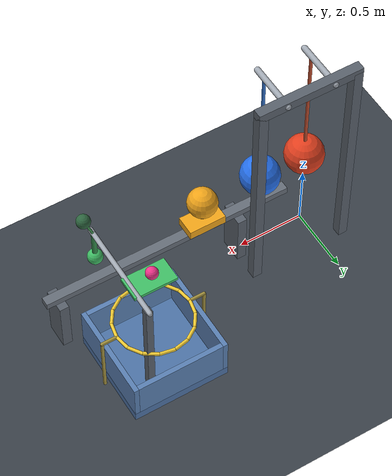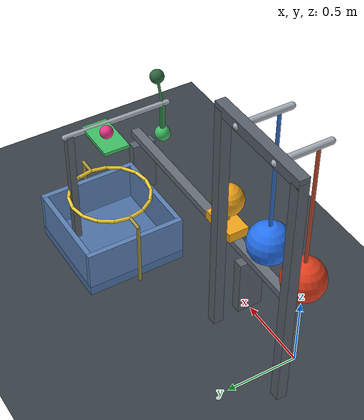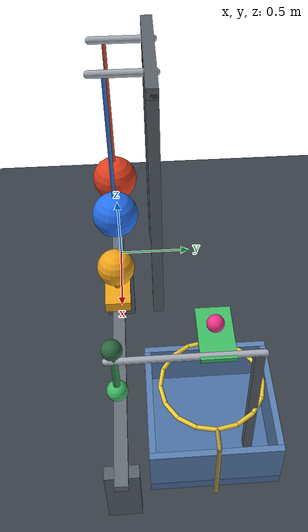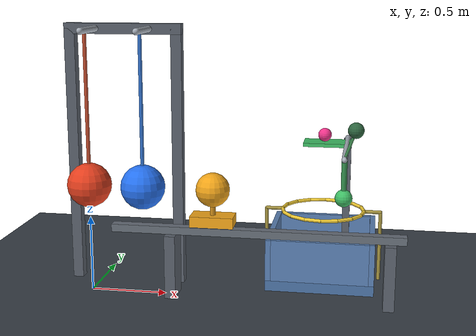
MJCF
<mujoco model="pendulum_cart_ball_release">
  <compiler angle="radian" autolimits="true" inertiafromgeom="true"/>
  <option timestep="0.002" gravity="0 0 -9.81" integrator="implicitfast" solver="Newton" iterations="80" tolerance="1e-10" cone="elliptic"/>
  <size njmax="2000" nconmax="400"/>
  <visual>
    <headlight ambient="0.4 0.4 0.4" diffuse="0.7 0.7 0.7" specular="0.2 0.2 0.2"/>
  </visual>

  <worldbody>
    <light name="main_light" pos="0.5 -2 4" dir="0 0.4 -1"/>
    <camera name="overview" pos="3.8 -5 3.2" xyaxes="0.85 0.53 0 -0.23 0.37 0.90"/>
    <geom name="floor" type="plane" size="5 5 0.1" rgba="0.22 0.25 0.28 1" friction="0.8 0.02 0.005" solref="0.01 1"/>

    <body name="pendulum_frame">
      <geom name="frame_post_left" type="box" pos="-0.18 0.25 0.86" size="0.035 0.035 0.86" contype="0" conaffinity="0" rgba="0.35 0.38 0.42 1"/>
      <geom name="frame_post_right" type="box" pos="0.54 0.25 0.86" size="0.035 0.035 0.86" contype="0" conaffinity="0" rgba="0.35 0.38 0.42 1"/>
      <geom name="frame_top" type="box" pos="0.18 0.25 1.72" size="0.395 0.035 0.035" contype="0" conaffinity="0" rgba="0.35 0.38 0.42 1"/>
      <geom name="frame_axle_1" type="capsule" fromto="0 -0.08 1.72 0 0.28 1.72" size="0.022" contype="0" conaffinity="0" rgba="0.65 0.68 0.72 1"/>
      <geom name="frame_axle_2" type="capsule" fromto="0.36 -0.08 1.72 0.36 0.28 1.72" size="0.022" contype="0" conaffinity="0" rgba="0.65 0.68 0.72 1"/>
    </body>

    <!-- A one-metre pendulum released with cos(angle)=0.3: height gain 0.7 m. -->
    <body name="pend1" pos="0 0 1.72">
      <joint name="pend1_hinge" type="hinge" axis="0 1 0" range="-0.14 1.30" damping="0.015" solreflimit="0.008 1" solimplimit="0.98 0.999 0.001"/>
      <geom name="pend1_rod" type="capsule" fromto="0 0 0 0 0 -1" size="0.012" mass="0.025" rgba="0.75 0.30 0.18 1" friction="0.1 0.005 0.001" solref="0.006 1"/>
      <geom name="pend1_bob" type="sphere" pos="0 0 -1" size="0.145" mass="4" rgba="0.90 0.25 0.12 1" friction="0.1 0.005 0.001" solref="0.006 1" solimp="0.95 0.99 0.001"/>
    </body>

    <body name="pend2" pos="0.36 0 1.72">
      <joint name="pend2_hinge" type="hinge" axis="0 1 0" range="-0.62 0.10" damping="0.02" solreflimit="0.008 1" solimplimit="0.98 0.999 0.001"/>
      <geom name="pend2_rod" type="capsule" fromto="0 0 0 0 0 -1" size="0.012" mass="0.025" rgba="0.20 0.45 0.80 1" friction="0.1 0.005 0.001" solref="0.006 1"/>
      <geom name="pend2_bob" type="sphere" pos="0 0 -1" size="0.145" mass="1.6" rgba="0.15 0.45 0.95 1" friction="0.1 0.005 0.001" solref="0.006 1" solimp="0.95 0.99 0.001"/>
    </body>

    <body name="cart_rail">
      <geom name="cart_rail_track" type="box" pos="1.10 0 0.445" size="0.95 0.035 0.025" rgba="0.40 0.43 0.47 1"/>
      <geom name="cart_rail_leg_left" type="box" pos="0.55 0 0.21" size="0.035 0.09 0.21" rgba="0.35 0.38 0.42 1"/>
      <geom name="cart_rail_leg_right" type="box" pos="1.95 0 0.21" size="0.035 0.09 0.21" rgba="0.35 0.38 0.42 1"/>
    </body>

    <body name="cart" pos="0.82 0 0.72">
      <joint name="cart_slide" type="slide" axis="1 0 0" range="0 1.15" damping="0.06" solreflimit="0.012 1" solimplimit="0.98 0.999 0.001"/>
      <geom name="cart_impact" type="sphere" size="0.11" mass="0.5" rgba="0.95 0.65 0.10 1" friction="0.15 0.005 0.001" solref="0.006 1" solimp="0.95 0.99 0.001"/>
      <geom name="cart_stem" type="capsule" fromto="0 0 -0.17 0 0 0" size="0.018" mass="0.02" rgba="0.80 0.55 0.10 1"/>
      <geom name="cart_chassis" type="box" pos="0 0 -0.20" size="0.14 0.075 0.035" mass="0.08" rgba="0.95 0.65 0.10 1" friction="0.3 0.01 0.002"/>
    </body>

    <body name="flap_mount">
      <geom name="flap_mount_post" type="box" pos="1.65 0.70 0.475" size="0.025 0.025 0.475" contype="0" conaffinity="0" rgba="0.35 0.38 0.42 1"/>
      <geom name="flap_mount_axle" type="capsule" fromto="1.65 -0.04 0.95 1.65 0.73 0.95" size="0.018" contype="0" conaffinity="0" rgba="0.65 0.68 0.72 1"/>
    </body>

    <!-- The elevated counterweight holds the flap closed until the cart pushes it over centre. -->
    <body name="flap" pos="1.65 0 0.95">
      <joint name="flap_hinge" type="hinge" axis="0 1 0" range="-1.57079632679 0" damping="0.006" solreflimit="0.008 1" solimplimit="0.98 0.999 0.001"/>
      <geom name="flap_shaft" type="capsule" fromto="0 0 0 0 0.5 0" size="0.014" mass="0.02" rgba="0.25 0.65 0.38 1"/>
      <geom name="flap_platform" type="box" pos="-0.13 0.5 0" size="0.16 0.09 0.012" mass="0.035" rgba="0.25 0.75 0.40 1" friction="0.2 0.005 0.002" solref="0.008 1"/>
      <geom name="flap_drive_arm" type="capsule" fromto="0 0 0 0 0 -0.25" size="0.018" mass="0.025" rgba="0.20 0.55 0.30 1" friction="0.15 0.005 0.001" solref="0.006 1"/>
      <geom name="flap_drive_pad" type="sphere" pos="0 0 -0.25" size="0.055" mass="0.015" rgba="0.25 0.75 0.40 1" friction="0.15 0.005 0.001" solref="0.006 1" solimp="0.95 0.99 0.001"/>
      <geom name="flap_counterweight_arm" type="capsule" fromto="0 0 0 0.065 0 0.18" size="0.009" mass="0.008" rgba="0.25 0.55 0.32 1"/>
      <geom name="flap_counterweight" type="sphere" pos="0.065 0 0.18" size="0.05" mass="0.28" rgba="0.18 0.40 0.25 1"/>
    </body>

    <body name="ball" pos="1.5 0.5 1.007">
      <freejoint name="ball_free"/>
      <geom name="ball_sphere" type="sphere" size="0.045" mass="0.035" rgba="0.95 0.20 0.55 1" condim="6" friction="0.65 0.03 0.01" solref="0.01 1" solimp="0.95 0.99 0.001"/>
    </body>

    <body name="hoop" pos="1.5 0.5 0.48">
      <geom name="hoop_ring_01" type="capsule" fromto="0.28 0 0 0.258686 0.107151 0" size="0.012" rgba="0.95 0.80 0.20 1" solref="0.01 1"/>
      <geom name="hoop_ring_02" type="capsule" fromto="0.258686 0.107151 0 0.197990 0.197990 0" size="0.012" rgba="0.95 0.80 0.20 1" solref="0.01 1"/>
      <geom name="hoop_ring_03" type="capsule" fromto="0.197990 0.197990 0 0.107151 0.258686 0" size="0.012" rgba="0.95 0.80 0.20 1" solref="0.01 1"/>
      <geom name="hoop_ring_04" type="capsule" fromto="0.107151 0.258686 0 0 0.28 0" size="0.012" rgba="0.95 0.80 0.20 1" solref="0.01 1"/>
      <geom name="hoop_ring_05" type="capsule" fromto="0 0.28 0 -0.107151 0.258686 0" size="0.012" rgba="0.95 0.80 0.20 1" solref="0.01 1"/>
      <geom name="hoop_ring_06" type="capsule" fromto="-0.107151 0.258686 0 -0.197990 0.197990 0" size="0.012" rgba="0.95 0.80 0.20 1" solref="0.01 1"/>
      <geom name="hoop_ring_07" type="capsule" fromto="-0.197990 0.197990 0 -0.258686 0.107151 0" size="0.012" rgba="0.95 0.80 0.20 1" solref="0.01 1"/>
      <geom name="hoop_ring_08" type="capsule" fromto="-0.258686 0.107151 0 -0.28 0 0" size="0.012" rgba="0.95 0.80 0.20 1" solref="0.01 1"/>
      <geom name="hoop_ring_09" type="capsule" fromto="-0.28 0 0 -0.258686 -0.107151 0" size="0.012" rgba="0.95 0.80 0.20 1" solref="0.01 1"/>
      <geom name="hoop_ring_10" type="capsule" fromto="-0.258686 -0.107151 0 -0.197990 -0.197990 0" size="0.012" rgba="0.95 0.80 0.20 1" solref="0.01 1"/>
      <geom name="hoop_ring_11" type="capsule" fromto="-0.197990 -0.197990 0 -0.107151 -0.258686 0" size="0.012" rgba="0.95 0.80 0.20 1" solref="0.01 1"/>
      <geom name="hoop_ring_12" type="capsule" fromto="-0.107151 -0.258686 0 0 -0.28 0" size="0.012" rgba="0.95 0.80 0.20 1" solref="0.01 1"/>
      <geom name="hoop_ring_13" type="capsule" fromto="0 -0.28 0 0.107151 -0.258686 0" size="0.012" rgba="0.95 0.80 0.20 1" solref="0.01 1"/>
      <geom name="hoop_ring_14" type="capsule" fromto="0.107151 -0.258686 0 0.197990 -0.197990 0" size="0.012" rgba="0.95 0.80 0.20 1" solref="0.01 1"/>
      <geom name="hoop_ring_15" type="capsule" fromto="0.197990 -0.197990 0 0.258686 -0.107151 0" size="0.012" rgba="0.95 0.80 0.20 1" solref="0.01 1"/>
      <geom name="hoop_ring_16" type="capsule" fromto="0.258686 -0.107151 0 0.28 0 0" size="0.012" rgba="0.95 0.80 0.20 1" solref="0.01 1"/>
      <geom name="hoop_bracket_left" type="capsule" fromto="-0.39 0 0 -0.28 0 0" size="0.012" rgba="0.65 0.58 0.25 1"/>
      <geom name="hoop_bracket_right" type="capsule" fromto="0.28 0 0 0.39 0 0" size="0.012" rgba="0.65 0.58 0.25 1"/>
      <geom name="hoop_post_left" type="cylinder" pos="-0.39 0 -0.24" size="0.012 0.24" rgba="0.65 0.58 0.25 1"/>
      <geom name="hoop_post_right" type="cylinder" pos="0.39 0 -0.24" size="0.012 0.24" rgba="0.65 0.58 0.25 1"/>
    </body>

    <body name="box" pos="1.5 0.5 0">
      <geom name="box_bottom" type="box" pos="0 0 0.04" size="0.358 0.358 0.035" rgba="0.30 0.45 0.65 1" condim="6" friction="0.8 0.03 0.01" solref="0.012 1" solimp="0.95 0.99 0.001"/>
      <geom name="box_wall_left" type="box" pos="-0.34 0 0.215" size="0.018 0.358 0.14" rgba="0.35 0.50 0.70 1" condim="6" friction="0.8 0.03 0.01" solref="0.012 1"/>
      <geom name="box_wall_right" type="box" pos="0.34 0 0.215" size="0.018 0.358 0.14" rgba="0.35 0.50 0.70 1" condim="6" friction="0.8 0.03 0.01" solref="0.012 1"/>
      <geom name="box_wall_front" type="box" pos="0 -0.34 0.215" size="0.322 0.018 0.14" rgba="0.35 0.50 0.70 1" condim="6" friction="0.8 0.03 0.01" solref="0.012 1"/>
      <geom name="box_wall_back" type="box" pos="0 0.34 0.215" size="0.322 0.018 0.14" rgba="0.35 0.50 0.70 1" condim="6" friction="0.8 0.03 0.01" solref="0.012 1"/>
    </body>
  </worldbody>

  <keyframe>
    <key name="start" qpos="1.266103672779499 0 0 0 1.5 0.5 1.007 1 0 0 0"/>
  </keyframe>
</mujoco>
